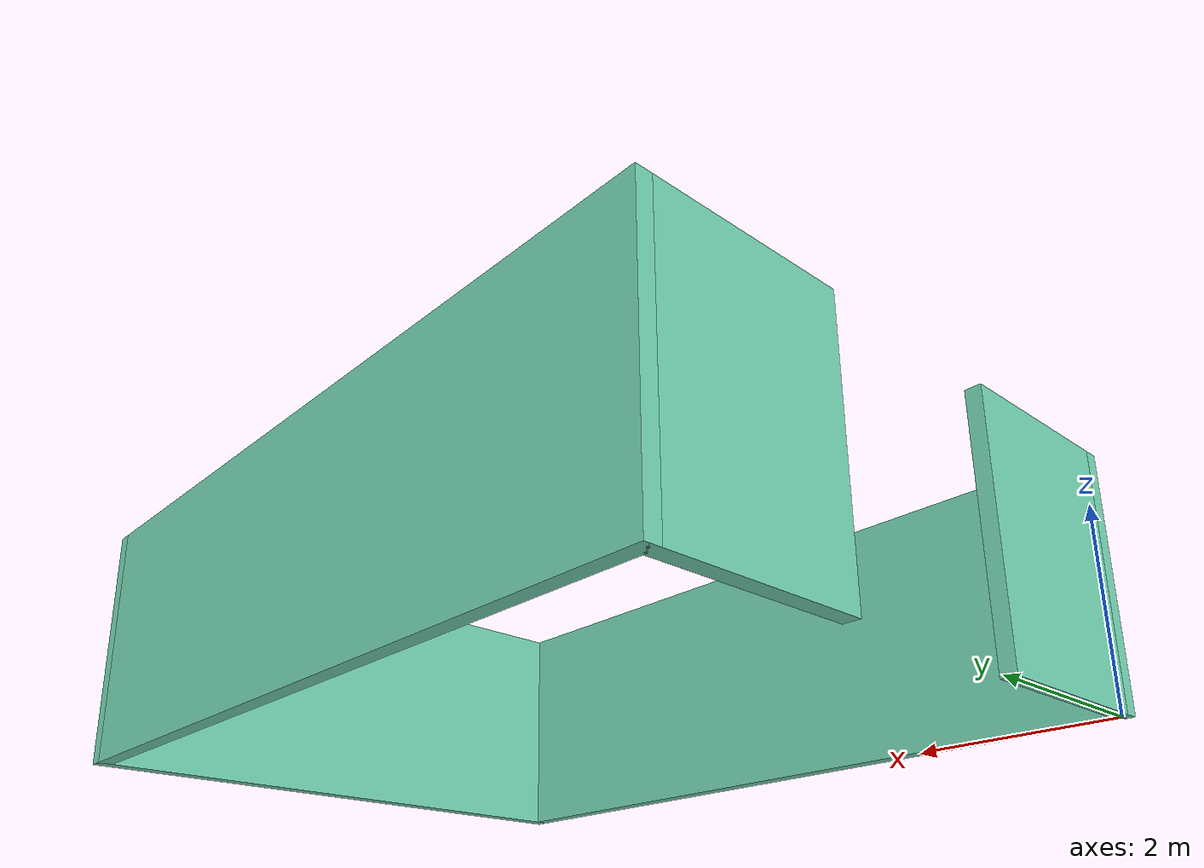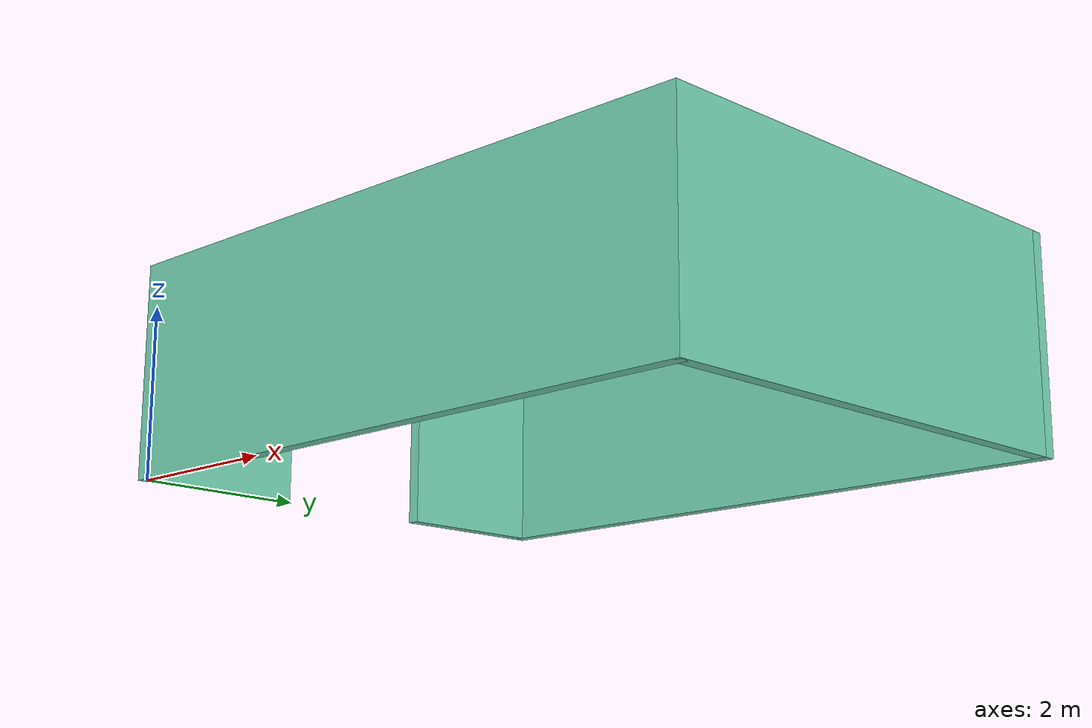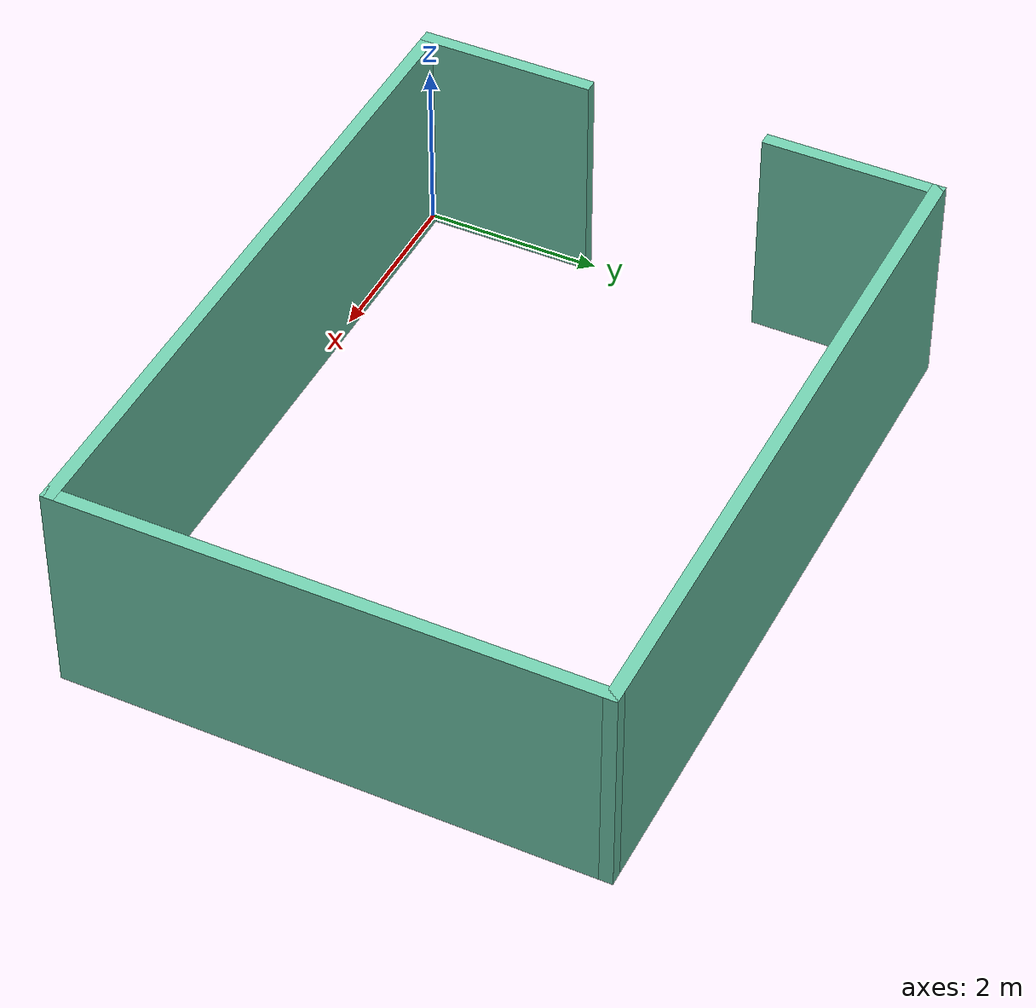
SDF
<?xml version='1.0'?>
<sdf version='1.7'>
  <model name='model.sdf'>
    <pose>3.925 2.925 0 0 -0 0</pose>
    <link name='Wall_0'>
      <collision name='Wall_0_Collision'>
        <geometry>
          <box>
            <size>8 0.15 2.5</size>
          </box>
        </geometry>
        <pose>0 0 1.25 0 -0 0</pose>
      </collision>
      <visual name='Wall_0_Visual'>
        <pose>0 0 1.25 0 -0 0</pose>
        <geometry>
          <box>
            <size>8 0.15 2.5</size>
          </box>
        </geometry>
        <material>
          <script>
            <uri>file://media/materials/scripts/gazebo.material</uri>
            <name>Gazebo/Grey</name>
          </script>
          <ambient>0.435294 0.796078 0.67451 1</ambient>
        </material>
        <meta>
          <layer>0</layer>
        </meta>
      </visual>
      <pose>-0 -2.925 0 0 -0 0</pose>
    </link>
    <link name='Wall_2'>
      <collision name='Wall_2_Collision'>
        <geometry>
          <box>
            <size>6 0.15 2.5</size>
          </box>
        </geometry>
        <pose>0 0 1.25 0 -0 0</pose>
      </collision>
      <visual name='Wall_2_Visual'>
        <pose>0 0 1.25 0 -0 0</pose>
        <geometry>
          <box>
            <size>6 0.15 2.5</size>
          </box>
        </geometry>
        <material>
          <script>
            <uri>file://media/materials/scripts/gazebo.material</uri>
            <name>Gazebo/Grey</name>
          </script>
          <ambient>0.435294 0.796078 0.67451 1</ambient>
        </material>
        <meta>
          <layer>0</layer>
        </meta>
      </visual>
      <pose>3.925 0 0 0 -0 1.5708</pose>
    </link>
    <link name='Wall_5'>
      <collision name='Wall_5_Collision'>
        <geometry>
          <box>
            <size>8 0.15 2.5</size>
          </box>
        </geometry>
        <pose>0 0 1.25 0 -0 0</pose>
      </collision>
      <visual name='Wall_5_Visual'>
        <pose>0 0 1.25 0 -0 0</pose>
        <geometry>
          <box>
            <size>8 0.15 2.5</size>
          </box>
        </geometry>
        <material>
          <script>
            <uri>file://media/materials/scripts/gazebo.material</uri>
            <name>Gazebo/Grey</name>
          </script>
          <ambient>0.435294 0.796078 0.67451 1</ambient>
        </material>
        <meta>
          <layer>0</layer>
        </meta>
      </visual>
      <pose>-0 2.925 0 0 -0 3.14159</pose>
    </link>
    <link name='Wall_6'>
      <collision name='Wall_6_Collision'>
        <geometry>
          <box>
            <size>2 0.15 2.5</size>
          </box>
        </geometry>
        <pose>0 0 1.25 0 -0 0</pose>
      </collision>
      <visual name='Wall_6_Visual'>
        <pose>0 0 1.25 0 -0 0</pose>
        <geometry>
          <box>
            <size>2 0.15 2.5</size>
          </box>
        </geometry>
        <material>
          <script>
            <uri>file://media/materials/scripts/gazebo.material</uri>
            <name>Gazebo/Grey</name>
          </script>
          <ambient>0.435294 0.796078 0.67451 1</ambient>
        </material>
        <meta>
          <layer>0</layer>
        </meta>
      </visual>
      <pose>-3.925 2 0 0 -0 -1.5708</pose>
    </link>
    <link name='Wall_8'>
      <collision name='Wall_8_Collision'>
        <geometry>
          <box>
            <size>2 0.15 2.5</size>
          </box>
        </geometry>
        <pose>0 0 1.25 0 -0 0</pose>
      </collision>
      <visual name='Wall_8_Visual'>
        <pose>0 0 1.25 0 -0 0</pose>
        <geometry>
          <box>
            <size>2 0.15 2.5</size>
          </box>
        </geometry>
        <material>
          <script>
            <uri>file://media/materials/scripts/gazebo.material</uri>
            <name>Gazebo/Grey</name>
          </script>
          <ambient>0.435294 0.796078 0.67451 1</ambient>
        </material>
        <meta>
          <layer>0</layer>
        </meta>
      </visual>
      <pose>-3.925 -2 0 0 -0 1.5708</pose>
    </link>
    <static>1</static>
  </model>
</sdf>
